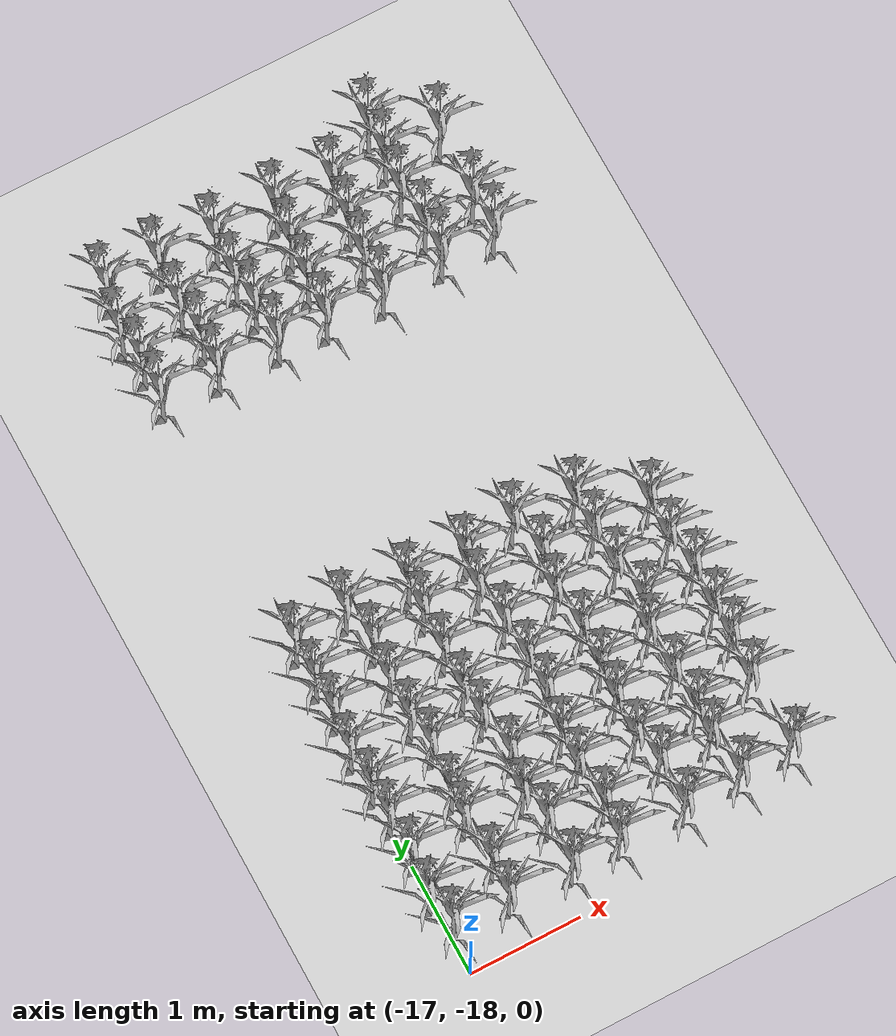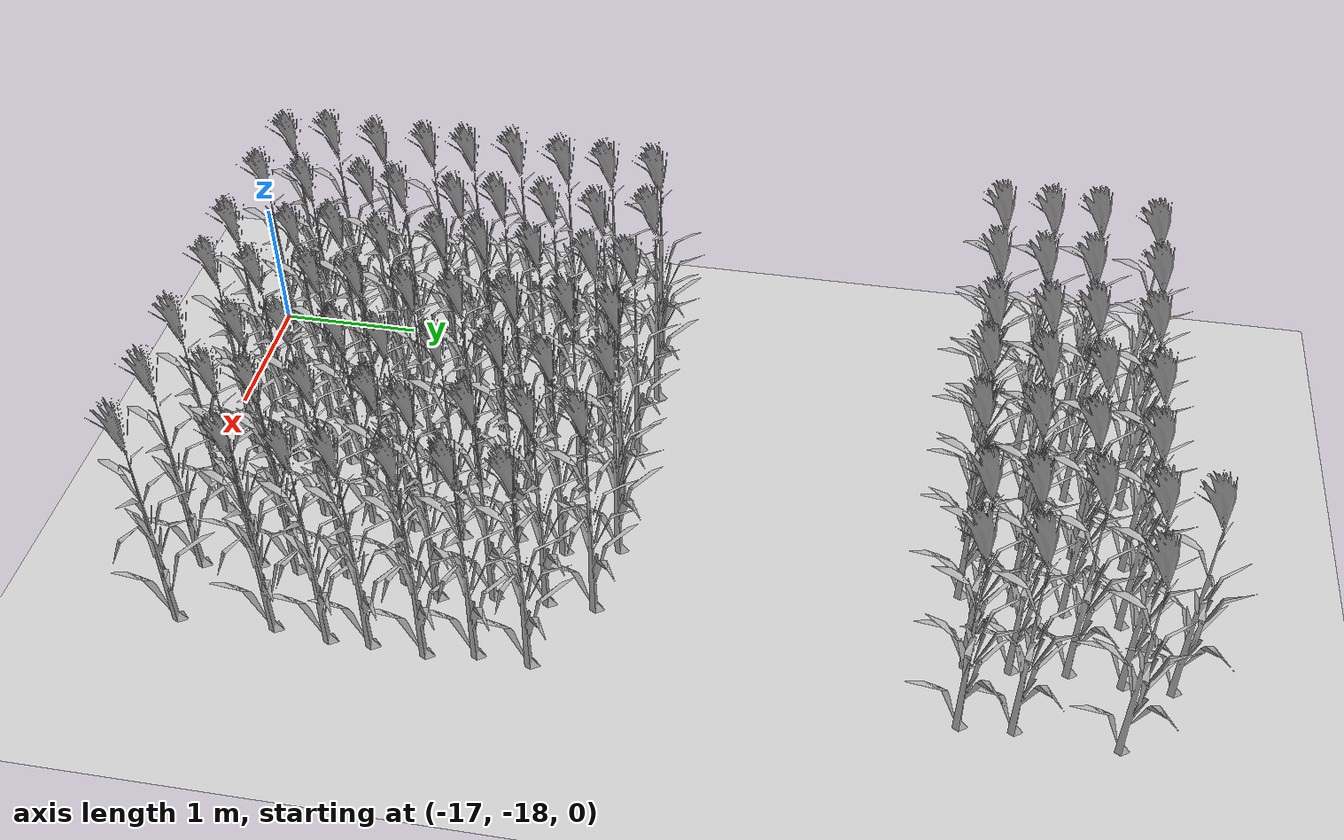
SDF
<sdf version="1.7">
 <world name="farmland_world">
  <model name="ground_plane">
   <static>1</static>
   <link name="link">
    <collision name="collision">
     <geometry><plane><normal>0 0 1</normal><size>40.0 40.0</size></plane></geometry>
     <surface><friction><ode><mu>100</mu><mu2>50</mu2></ode></friction></surface>
    </collision>
    <visual name="visual">
     <cast_shadows>0</cast_shadows>
     <geometry><plane><normal>0 0 1</normal><size>40.0 40.0</size></plane></geometry>
     <material>
      <script><uri>file://media/materials/scripts/gazebo.material</uri><name>Gazebo/Grey</name></script>
     </material>
    </visual>
   </link>
  </model>
  <model name="tree_3_1632">
   <static>1</static>
   <link name="link">
    <collision name="collision">
     <geometry><mesh><uri>model://Corn_low_poly/corn.obj</uri><scale>1 1 1</scale></mesh></geometry>
     <surface><friction><ode><mu>100</mu><mu2>50</mu2></ode></friction></surface>
    </collision>
    <visual name="visual">
     <geometry><mesh><uri>model://Corn_low_poly/corn.obj</uri><scale>1 1 1</scale></mesh></geometry>
    </visual>
   </link>
   <pose>-13.94343240880805 -17.010801661793316 0 0 0 0</pose>
  </model>
  <model name="tree_3_1633">
   <static>1</static>
   <link name="link">
    <collision name="collision">
     <geometry><mesh><uri>model://Corn_low_poly/corn.obj</uri><scale>1 1 1</scale></mesh></geometry>
     <surface><friction><ode><mu>100</mu><mu2>50</mu2></ode></friction></surface>
    </collision>
    <visual name="visual">
     <geometry><mesh><uri>model://Corn_low_poly/corn.obj</uri><scale>1 1 1</scale></mesh></geometry>
    </visual>
   </link>
   <pose>-14.439973562699198 -17.025837714423414 0 0 0 0</pose>
  </model>
  <model name="tree_3_1634">
   <static>1</static>
   <link name="link">
    <collision name="collision">
     <geometry><mesh><uri>model://Corn_low_poly/corn.obj</uri><scale>1 1 1</scale></mesh></geometry>
     <surface><friction><ode><mu>100</mu><mu2>50</mu2></ode></friction></surface>
    </collision>
    <visual name="visual">
     <geometry><mesh><uri>model://Corn_low_poly/corn.obj</uri><scale>1 1 1</scale></mesh></geometry>
    </visual>
   </link>
   <pose>-14.985562298791491 -17.01346754902586 0 0 0 0</pose>
  </model>
  <model name="tree_3_1635">
   <static>1</static>
   <link name="link">
    <collision name="collision">
     <geometry><mesh><uri>model://Corn_low_poly/corn.obj</uri><scale>1 1 1</scale></mesh></geometry>
     <surface><friction><ode><mu>100</mu><mu2>50</mu2></ode></friction></surface>
    </collision>
    <visual name="visual">
     <geometry><mesh><uri>model://Corn_low_poly/corn.obj</uri><scale>1 1 1</scale></mesh></geometry>
    </visual>
   </link>
   <pose>-15.499100371139539 -16.996762012509702 0 0 0 0</pose>
  </model>
  <model name="tree_3_1636">
   <static>1</static>
   <link name="link">
    <collision name="collision">
     <geometry><mesh><uri>model://Corn_low_poly/corn.obj</uri><scale>1 1 1</scale></mesh></geometry>
     <surface><friction><ode><mu>100</mu><mu2>50</mu2></ode></friction></surface>
    </collision>
    <visual name="visual">
     <geometry><mesh><uri>model://Corn_low_poly/corn.obj</uri><scale>1 1 1</scale></mesh></geometry>
    </visual>
   </link>
   <pose>-16.004698252896493 -17.01010474512301 0 0 0 0</pose>
  </model>
  <model name="tree_3_1637">
   <static>1</static>
   <link name="link">
    <collision name="collision">
     <geometry><mesh><uri>model://Corn_low_poly/corn.obj</uri><scale>1 1 1</scale></mesh></geometry>
     <surface><friction><ode><mu>100</mu><mu2>50</mu2></ode></friction></surface>
    </collision>
    <visual name="visual">
     <geometry><mesh><uri>model://Corn_low_poly/corn.obj</uri><scale>1 1 1</scale></mesh></geometry>
    </visual>
   </link>
   <pose>-16.505018048757087 -16.956187553822417 0 0 0 0</pose>
  </model>
  <model name="tree_3_1638">
   <static>1</static>
   <link name="link">
    <collision name="collision">
     <geometry><mesh><uri>model://Corn_low_poly/corn.obj</uri><scale>1 1 1</scale></mesh></geometry>
     <surface><friction><ode><mu>100</mu><mu2>50</mu2></ode></friction></surface>
    </collision>
    <visual name="visual">
     <geometry><mesh><uri>model://Corn_low_poly/corn.obj</uri><scale>1 1 1</scale></mesh></geometry>
    </visual>
   </link>
   <pose>-17.006674460531737 -17.018117891384872 0 0 0 0</pose>
  </model>
  <model name="tree_3_1667">
   <static>1</static>
   <link name="link">
    <collision name="collision">
     <geometry><mesh><uri>model://Corn_low_poly/corn.obj</uri><scale>1 1 1</scale></mesh></geometry>
     <surface><friction><ode><mu>100</mu><mu2>50</mu2></ode></friction></surface>
    </collision>
    <visual name="visual">
     <geometry><mesh><uri>model://Corn_low_poly/corn.obj</uri><scale>1 1 1</scale></mesh></geometry>
    </visual>
   </link>
   <pose>-14.45262130340462 -17.29042798549356 0 0 0 0</pose>
  </model>
  <model name="tree_3_1668">
   <static>1</static>
   <link name="link">
    <collision name="collision">
     <geometry><mesh><uri>model://Corn_low_poly/corn.obj</uri><scale>1 1 1</scale></mesh></geometry>
     <surface><friction><ode><mu>100</mu><mu2>50</mu2></ode></friction></surface>
    </collision>
    <visual name="visual">
     <geometry><mesh><uri>model://Corn_low_poly/corn.obj</uri><scale>1 1 1</scale></mesh></geometry>
    </visual>
   </link>
   <pose>-14.916517264053812 -17.289809059414342 0 0 0 0</pose>
  </model>
  <model name="tree_3_1669">
   <static>1</static>
   <link name="link">
    <collision name="collision">
     <geometry><mesh><uri>model://Corn_low_poly/corn.obj</uri><scale>1 1 1</scale></mesh></geometry>
     <surface><friction><ode><mu>100</mu><mu2>50</mu2></ode></friction></surface>
    </collision>
    <visual name="visual">
     <geometry><mesh><uri>model://Corn_low_poly/corn.obj</uri><scale>1 1 1</scale></mesh></geometry>
    </visual>
   </link>
   <pose>-15.463893228445706 -17.37535965711419 0 0 0 0</pose>
  </model>
  <model name="tree_3_1670">
   <static>1</static>
   <link name="link">
    <collision name="collision">
     <geometry><mesh><uri>model://Corn_low_poly/corn.obj</uri><scale>1 1 1</scale></mesh></geometry>
     <surface><friction><ode><mu>100</mu><mu2>50</mu2></ode></friction></surface>
    </collision>
    <visual name="visual">
     <geometry><mesh><uri>model://Corn_low_poly/corn.obj</uri><scale>1 1 1</scale></mesh></geometry>
    </visual>
   </link>
   <pose>-15.92803509974474 -17.281403429546287 0 0 0 0</pose>
  </model>
  <model name="tree_3_1671">
   <static>1</static>
   <link name="link">
    <collision name="collision">
     <geometry><mesh><uri>model://Corn_low_poly/corn.obj</uri><scale>1 1 1</scale></mesh></geometry>
     <surface><friction><ode><mu>100</mu><mu2>50</mu2></ode></friction></surface>
    </collision>
    <visual name="visual">
     <geometry><mesh><uri>model://Corn_low_poly/corn.obj</uri><scale>1 1 1</scale></mesh></geometry>
    </visual>
   </link>
   <pose>-16.474035507246686 -17.376660907676413 0 0 0 0</pose>
  </model>
  <model name="tree_3_1672">
   <static>1</static>
   <link name="link">
    <collision name="collision">
     <geometry><mesh><uri>model://Corn_low_poly/corn.obj</uri><scale>1 1 1</scale></mesh></geometry>
     <surface><friction><ode><mu>100</mu><mu2>50</mu2></ode></friction></surface>
    </collision>
    <visual name="visual">
     <geometry><mesh><uri>model://Corn_low_poly/corn.obj</uri><scale>1 1 1</scale></mesh></geometry>
    </visual>
   </link>
   <pose>-17.04250457852733 -17.377108292955473 0 0 0 0</pose>
  </model>
  <model name="tree_3_1700">
   <static>1</static>
   <link name="link">
    <collision name="collision">
     <geometry><mesh><uri>model://Corn_low_poly/corn.obj</uri><scale>1 1 1</scale></mesh></geometry>
     <surface><friction><ode><mu>100</mu><mu2>50</mu2></ode></friction></surface>
    </collision>
    <visual name="visual">
     <geometry><mesh><uri>model://Corn_low_poly/corn.obj</uri><scale>1 1 1</scale></mesh></geometry>
    </visual>
   </link>
   <pose>-13.920688316431082 -17.653035680214312 0 0 0 0</pose>
  </model>
  <model name="tree_3_1701">
   <static>1</static>
   <link name="link">
    <collision name="collision">
     <geometry><mesh><uri>model://Corn_low_poly/corn.obj</uri><scale>1 1 1</scale></mesh></geometry>
     <surface><friction><ode><mu>100</mu><mu2>50</mu2></ode></friction></surface>
    </collision>
    <visual name="visual">
     <geometry><mesh><uri>model://Corn_low_poly/corn.obj</uri><scale>1 1 1</scale></mesh></geometry>
    </visual>
   </link>
   <pose>-14.39308943822073 -17.668799636374324 0 0 0 0</pose>
  </model>
  <model name="tree_3_1702">
   <static>1</static>
   <link name="link">
    <collision name="collision">
     <geometry><mesh><uri>model://Corn_low_poly/corn.obj</uri><scale>1 1 1</scale></mesh></geometry>
     <surface><friction><ode><mu>100</mu><mu2>50</mu2></ode></friction></surface>
    </collision>
    <visual name="visual">
     <geometry><mesh><uri>model://Corn_low_poly/corn.obj</uri><scale>1 1 1</scale></mesh></geometry>
    </visual>
   </link>
   <pose>-14.90457997231634 -17.690328354239906 0 0 0 0</pose>
  </model>
  <model name="tree_3_1703">
   <static>1</static>
   <link name="link">
    <collision name="collision">
     <geometry><mesh><uri>model://Corn_low_poly/corn.obj</uri><scale>1 1 1</scale></mesh></geometry>
     <surface><friction><ode><mu>100</mu><mu2>50</mu2></ode></friction></surface>
    </collision>
    <visual name="visual">
     <geometry><mesh><uri>model://Corn_low_poly/corn.obj</uri><scale>1 1 1</scale></mesh></geometry>
    </visual>
   </link>
   <pose>-15.493620941622273 -17.686445619850055 0 0 0 0</pose>
  </model>
  <model name="tree_3_1704">
   <static>1</static>
   <link name="link">
    <collision name="collision">
     <geometry><mesh><uri>model://Corn_low_poly/corn.obj</uri><scale>1 1 1</scale></mesh></geometry>
     <surface><friction><ode><mu>100</mu><mu2>50</mu2></ode></friction></surface>
    </collision>
    <visual name="visual">
     <geometry><mesh><uri>model://Corn_low_poly/corn.obj</uri><scale>1 1 1</scale></mesh></geometry>
    </visual>
   </link>
   <pose>-15.930686778464093 -17.703574726734168 0 0 0 0</pose>
  </model>
  <model name="tree_3_1705">
   <static>1</static>
   <link name="link">
    <collision name="collision">
     <geometry><mesh><uri>model://Corn_low_poly/corn.obj</uri><scale>1 1 1</scale></mesh></geometry>
     <surface><friction><ode><mu>100</mu><mu2>50</mu2></ode></friction></surface>
    </collision>
    <visual name="visual">
     <geometry><mesh><uri>model://Corn_low_poly/corn.obj</uri><scale>1 1 1</scale></mesh></geometry>
    </visual>
   </link>
   <pose>-16.493567892534987 -17.69414692530904 0 0 0 0</pose>
  </model>
  <model name="tree_3_1706">
   <static>1</static>
   <link name="link">
    <collision name="collision">
     <geometry><mesh><uri>model://Corn_low_poly/corn.obj</uri><scale>1 1 1</scale></mesh></geometry>
     <surface><friction><ode><mu>100</mu><mu2>50</mu2></ode></friction></surface>
    </collision>
    <visual name="visual">
     <geometry><mesh><uri>model://Corn_low_poly/corn.obj</uri><scale>1 1 1</scale></mesh></geometry>
    </visual>
   </link>
   <pose>-16.981287621819096 -17.66660512518102 0 0 0 0</pose>
  </model>
  <model name="tree_3_1734">
   <static>1</static>
   <link name="link">
    <collision name="collision">
     <geometry><mesh><uri>model://Corn_low_poly/corn.obj</uri><scale>1 1 1</scale></mesh></geometry>
     <surface><friction><ode><mu>100</mu><mu2>50</mu2></ode></friction></surface>
    </collision>
    <visual name="visual">
     <geometry><mesh><uri>model://Corn_low_poly/corn.obj</uri><scale>1 1 1</scale></mesh></geometry>
    </visual>
   </link>
   <pose>-13.899653008258563 -15.999240825247368 0 0 0 0</pose>
  </model>
  <model name="tree_3_1735">
   <static>1</static>
   <link name="link">
    <collision name="collision">
     <geometry><mesh><uri>model://Corn_low_poly/corn.obj</uri><scale>1 1 1</scale></mesh></geometry>
     <surface><friction><ode><mu>100</mu><mu2>50</mu2></ode></friction></surface>
    </collision>
    <visual name="visual">
     <geometry><mesh><uri>model://Corn_low_poly/corn.obj</uri><scale>1 1 1</scale></mesh></geometry>
    </visual>
   </link>
   <pose>-14.375652090142932 -16.04330724557954 0 0 0 0</pose>
  </model>
  <model name="tree_3_1736">
   <static>1</static>
   <link name="link">
    <collision name="collision">
     <geometry><mesh><uri>model://Corn_low_poly/corn.obj</uri><scale>1 1 1</scale></mesh></geometry>
     <surface><friction><ode><mu>100</mu><mu2>50</mu2></ode></friction></surface>
    </collision>
    <visual name="visual">
     <geometry><mesh><uri>model://Corn_low_poly/corn.obj</uri><scale>1 1 1</scale></mesh></geometry>
    </visual>
   </link>
   <pose>-14.932257012029147 -16.02485146985959 0 0 0 0</pose>
  </model>
  <model name="tree_3_1737">
   <static>1</static>
   <link name="link">
    <collision name="collision">
     <geometry><mesh><uri>model://Corn_low_poly/corn.obj</uri><scale>1 1 1</scale></mesh></geometry>
     <surface><friction><ode><mu>100</mu><mu2>50</mu2></ode></friction></surface>
    </collision>
    <visual name="visual">
     <geometry><mesh><uri>model://Corn_low_poly/corn.obj</uri><scale>1 1 1</scale></mesh></geometry>
    </visual>
   </link>
   <pose>-15.432157021553541 -16.033897954952316 0 0 0 0</pose>
  </model>
  <model name="tree_3_1738">
   <static>1</static>
   <link name="link">
    <collision name="collision">
     <geometry><mesh><uri>model://Corn_low_poly/corn.obj</uri><scale>1 1 1</scale></mesh></geometry>
     <surface><friction><ode><mu>100</mu><mu2>50</mu2></ode></friction></surface>
    </collision>
    <visual name="visual">
     <geometry><mesh><uri>model://Corn_low_poly/corn.obj</uri><scale>1 1 1</scale></mesh></geometry>
    </visual>
   </link>
   <pose>-16.00995705380238 -16.021893765694596 0 0 0 0</pose>
  </model>
  <model name="tree_3_1739">
   <static>1</static>
   <link name="link">
    <collision name="collision">
     <geometry><mesh><uri>model://Corn_low_poly/corn.obj</uri><scale>1 1 1</scale></mesh></geometry>
     <surface><friction><ode><mu>100</mu><mu2>50</mu2></ode></friction></surface>
    </collision>
    <visual name="visual">
     <geometry><mesh><uri>model://Corn_low_poly/corn.obj</uri><scale>1 1 1</scale></mesh></geometry>
    </visual>
   </link>
   <pose>-16.4899727266005 -16.0184429991483 0 0 0 0</pose>
  </model>
  <model name="tree_3_1740">
   <static>1</static>
   <link name="link">
    <collision name="collision">
     <geometry><mesh><uri>model://Corn_low_poly/corn.obj</uri><scale>1 1 1</scale></mesh></geometry>
     <surface><friction><ode><mu>100</mu><mu2>50</mu2></ode></friction></surface>
    </collision>
    <visual name="visual">
     <geometry><mesh><uri>model://Corn_low_poly/corn.obj</uri><scale>1 1 1</scale></mesh></geometry>
    </visual>
   </link>
   <pose>-17.041640770921173 -16.03786102537527 0 0 0 0</pose>
  </model>
  <model name="tree_3_1768">
   <static>1</static>
   <link name="link">
    <collision name="collision">
     <geometry><mesh><uri>model://Corn_low_poly/corn.obj</uri><scale>1 1 1</scale></mesh></geometry>
     <surface><friction><ode><mu>100</mu><mu2>50</mu2></ode></friction></surface>
    </collision>
    <visual name="visual">
     <geometry><mesh><uri>model://Corn_low_poly/corn.obj</uri><scale>1 1 1</scale></mesh></geometry>
    </visual>
   </link>
   <pose>-13.916194819073338 -16.358989126024753 0 0 0 0</pose>
  </model>
  <model name="tree_3_1769">
   <static>1</static>
   <link name="link">
    <collision name="collision">
     <geometry><mesh><uri>model://Corn_low_poly/corn.obj</uri><scale>1 1 1</scale></mesh></geometry>
     <surface><friction><ode><mu>100</mu><mu2>50</mu2></ode></friction></surface>
    </collision>
    <visual name="visual">
     <geometry><mesh><uri>model://Corn_low_poly/corn.obj</uri><scale>1 1 1</scale></mesh></geometry>
    </visual>
   </link>
   <pose>-14.472746082500388 -16.296141562295695 0 0 0 0</pose>
  </model>
  <model name="tree_3_1770">
   <static>1</static>
   <link name="link">
    <collision name="collision">
     <geometry><mesh><uri>model://Corn_low_poly/corn.obj</uri><scale>1 1 1</scale></mesh></geometry>
     <surface><friction><ode><mu>100</mu><mu2>50</mu2></ode></friction></surface>
    </collision>
    <visual name="visual">
     <geometry><mesh><uri>model://Corn_low_poly/corn.obj</uri><scale>1 1 1</scale></mesh></geometry>
    </visual>
   </link>
   <pose>-14.948517907633658 -16.373649947890947 0 0 0 0</pose>
  </model>
  <model name="tree_3_1771">
   <static>1</static>
   <link name="link">
    <collision name="collision">
     <geometry><mesh><uri>model://Corn_low_poly/corn.obj</uri><scale>1 1 1</scale></mesh></geometry>
     <surface><friction><ode><mu>100</mu><mu2>50</mu2></ode></friction></surface>
    </collision>
    <visual name="visual">
     <geometry><mesh><uri>model://Corn_low_poly/corn.obj</uri><scale>1 1 1</scale></mesh></geometry>
    </visual>
   </link>
   <pose>-15.426734606548008 -16.34715590843223 0 0 0 0</pose>
  </model>
  <model name="tree_3_1772">
   <static>1</static>
   <link name="link">
    <collision name="collision">
     <geometry><mesh><uri>model://Corn_low_poly/corn.obj</uri><scale>1 1 1</scale></mesh></geometry>
     <surface><friction><ode><mu>100</mu><mu2>50</mu2></ode></friction></surface>
    </collision>
    <visual name="visual">
     <geometry><mesh><uri>model://Corn_low_poly/corn.obj</uri><scale>1 1 1</scale></mesh></geometry>
    </visual>
   </link>
   <pose>-15.986303641970583 -16.29150956570107 0 0 0 0</pose>
  </model>
  <model name="tree_3_1773">
   <static>1</static>
   <link name="link">
    <collision name="collision">
     <geometry><mesh><uri>model://Corn_low_poly/corn.obj</uri><scale>1 1 1</scale></mesh></geometry>
     <surface><friction><ode><mu>100</mu><mu2>50</mu2></ode></friction></surface>
    </collision>
    <visual name="visual">
     <geometry><mesh><uri>model://Corn_low_poly/corn.obj</uri><scale>1 1 1</scale></mesh></geometry>
    </visual>
   </link>
   <pose>-16.449553249788092 -16.303296338209762 0 0 0 0</pose>
  </model>
  <model name="tree_3_1774">
   <static>1</static>
   <link name="link">
    <collision name="collision">
     <geometry><mesh><uri>model://Corn_low_poly/corn.obj</uri><scale>1 1 1</scale></mesh></geometry>
     <surface><friction><ode><mu>100</mu><mu2>50</mu2></ode></friction></surface>
    </collision>
    <visual name="visual">
     <geometry><mesh><uri>model://Corn_low_poly/corn.obj</uri><scale>1 1 1</scale></mesh></geometry>
    </visual>
   </link>
   <pose>-17.023637239485836 -16.373493268178507 0 0 0 0</pose>
  </model>
  <model name="tree_3_1802">
   <static>1</static>
   <link name="link">
    <collision name="collision">
     <geometry><mesh><uri>model://Corn_low_poly/corn.obj</uri><scale>1 1 1</scale></mesh></geometry>
     <surface><friction><ode><mu>100</mu><mu2>50</mu2></ode></friction></surface>
    </collision>
    <visual name="visual">
     <geometry><mesh><uri>model://Corn_low_poly/corn.obj</uri><scale>1 1 1</scale></mesh></geometry>
    </visual>
   </link>
   <pose>-13.909014978315188 -16.63664097909121 0 0 0 0</pose>
  </model>
  <model name="tree_3_1803">
   <static>1</static>
   <link name="link">
    <collision name="collision">
     <geometry><mesh><uri>model://Corn_low_poly/corn.obj</uri><scale>1 1 1</scale></mesh></geometry>
     <surface><friction><ode><mu>100</mu><mu2>50</mu2></ode></friction></surface>
    </collision>
    <visual name="visual">
     <geometry><mesh><uri>model://Corn_low_poly/corn.obj</uri><scale>1 1 1</scale></mesh></geometry>
    </visual>
   </link>
   <pose>-14.465035297700613 -16.688067573031372 0 0 0 0</pose>
  </model>
  <model name="tree_3_1804">
   <static>1</static>
   <link name="link">
    <collision name="collision">
     <geometry><mesh><uri>model://Corn_low_poly/corn.obj</uri><scale>1 1 1</scale></mesh></geometry>
     <surface><friction><ode><mu>100</mu><mu2>50</mu2></ode></friction></surface>
    </collision>
    <visual name="visual">
     <geometry><mesh><uri>model://Corn_low_poly/corn.obj</uri><scale>1 1 1</scale></mesh></geometry>
    </visual>
   </link>
   <pose>-14.972034034142897 -16.6613526449487 0 0 0 0</pose>
  </model>
  <model name="tree_3_1805">
   <static>1</static>
   <link name="link">
    <collision name="collision">
     <geometry><mesh><uri>model://Corn_low_poly/corn.obj</uri><scale>1 1 1</scale></mesh></geometry>
     <surface><friction><ode><mu>100</mu><mu2>50</mu2></ode></friction></surface>
    </collision>
    <visual name="visual">
     <geometry><mesh><uri>model://Corn_low_poly/corn.obj</uri><scale>1 1 1</scale></mesh></geometry>
    </visual>
   </link>
   <pose>-15.492559516799552 -16.713695902032143 0 0 0 0</pose>
  </model>
  <model name="tree_3_1806">
   <static>1</static>
   <link name="link">
    <collision name="collision">
     <geometry><mesh><uri>model://Corn_low_poly/corn.obj</uri><scale>1 1 1</scale></mesh></geometry>
     <surface><friction><ode><mu>100</mu><mu2>50</mu2></ode></friction></surface>
    </collision>
    <visual name="visual">
     <geometry><mesh><uri>model://Corn_low_poly/corn.obj</uri><scale>1 1 1</scale></mesh></geometry>
    </visual>
   </link>
   <pose>-15.924641881937003 -16.663931121729266 0 0 0 0</pose>
  </model>
  <model name="tree_3_1807">
   <static>1</static>
   <link name="link">
    <collision name="collision">
     <geometry><mesh><uri>model://Corn_low_poly/corn.obj</uri><scale>1 1 1</scale></mesh></geometry>
     <surface><friction><ode><mu>100</mu><mu2>50</mu2></ode></friction></surface>
    </collision>
    <visual name="visual">
     <geometry><mesh><uri>model://Corn_low_poly/corn.obj</uri><scale>1 1 1</scale></mesh></geometry>
    </visual>
   </link>
   <pose>-16.48552865960309 -16.71570163697759 0 0 0 0</pose>
  </model>
  <model name="tree_3_1808">
   <static>1</static>
   <link name="link">
    <collision name="collision">
     <geometry><mesh><uri>model://Corn_low_poly/corn.obj</uri><scale>1 1 1</scale></mesh></geometry>
     <surface><friction><ode><mu>100</mu><mu2>50</mu2></ode></friction></surface>
    </collision>
    <visual name="visual">
     <geometry><mesh><uri>model://Corn_low_poly/corn.obj</uri><scale>1 1 1</scale></mesh></geometry>
    </visual>
   </link>
   <pose>-17.021395358732946 -16.665746849592615 0 0 0 0</pose>
  </model>
  <model name="tree_3_1837">
   <static>1</static>
   <link name="link">
    <collision name="collision">
     <geometry><mesh><uri>model://Corn_low_poly/corn.obj</uri><scale>1 1 1</scale></mesh></geometry>
     <surface><friction><ode><mu>100</mu><mu2>50</mu2></ode></friction></surface>
    </collision>
    <visual name="visual">
     <geometry><mesh><uri>model://Corn_low_poly/corn.obj</uri><scale>1 1 1</scale></mesh></geometry>
    </visual>
   </link>
   <pose>-14.457110423272368 -15.021115977395514 0 0 0 0</pose>
  </model>
  <model name="tree_3_1838">
   <static>1</static>
   <link name="link">
    <collision name="collision">
     <geometry><mesh><uri>model://Corn_low_poly/corn.obj</uri><scale>1 1 1</scale></mesh></geometry>
     <surface><friction><ode><mu>100</mu><mu2>50</mu2></ode></friction></surface>
    </collision>
    <visual name="visual">
     <geometry><mesh><uri>model://Corn_low_poly/corn.obj</uri><scale>1 1 1</scale></mesh></geometry>
    </visual>
   </link>
   <pose>-14.988855654472369 -14.963502710577501 0 0 0 0</pose>
  </model>
  <model name="tree_3_1839">
   <static>1</static>
   <link name="link">
    <collision name="collision">
     <geometry><mesh><uri>model://Corn_low_poly/corn.obj</uri><scale>1 1 1</scale></mesh></geometry>
     <surface><friction><ode><mu>100</mu><mu2>50</mu2></ode></friction></surface>
    </collision>
    <visual name="visual">
     <geometry><mesh><uri>model://Corn_low_poly/corn.obj</uri><scale>1 1 1</scale></mesh></geometry>
    </visual>
   </link>
   <pose>-15.452652766497781 -15.027102902810764 0 0 0 0</pose>
  </model>
  <model name="tree_3_1840">
   <static>1</static>
   <link name="link">
    <collision name="collision">
     <geometry><mesh><uri>model://Corn_low_poly/corn.obj</uri><scale>1 1 1</scale></mesh></geometry>
     <surface><friction><ode><mu>100</mu><mu2>50</mu2></ode></friction></surface>
    </collision>
    <visual name="visual">
     <geometry><mesh><uri>model://Corn_low_poly/corn.obj</uri><scale>1 1 1</scale></mesh></geometry>
    </visual>
   </link>
   <pose>-15.967457675088106 -15.01714550180582 0 0 0 0</pose>
  </model>
  <model name="tree_3_1841">
   <static>1</static>
   <link name="link">
    <collision name="collision">
     <geometry><mesh><uri>model://Corn_low_poly/corn.obj</uri><scale>1 1 1</scale></mesh></geometry>
     <surface><friction><ode><mu>100</mu><mu2>50</mu2></ode></friction></surface>
    </collision>
    <visual name="visual">
     <geometry><mesh><uri>model://Corn_low_poly/corn.obj</uri><scale>1 1 1</scale></mesh></geometry>
    </visual>
   </link>
   <pose>-16.52705980069439 -14.979509942564436 0 0 0 0</pose>
  </model>
  <model name="tree_3_1842">
   <static>1</static>
   <link name="link">
    <collision name="collision">
     <geometry><mesh><uri>model://Corn_low_poly/corn.obj</uri><scale>1 1 1</scale></mesh></geometry>
     <surface><friction><ode><mu>100</mu><mu2>50</mu2></ode></friction></surface>
    </collision>
    <visual name="visual">
     <geometry><mesh><uri>model://Corn_low_poly/corn.obj</uri><scale>1 1 1</scale></mesh></geometry>
    </visual>
   </link>
   <pose>-17.010521360142214 -15.033169217101065 0 0 0 0</pose>
  </model>
  <model name="tree_3_1870">
   <static>1</static>
   <link name="link">
    <collision name="collision">
     <geometry><mesh><uri>model://Corn_low_poly/corn.obj</uri><scale>1 1 1</scale></mesh></geometry>
     <surface><friction><ode><mu>100</mu><mu2>50</mu2></ode></friction></surface>
    </collision>
    <visual name="visual">
     <geometry><mesh><uri>model://Corn_low_poly/corn.obj</uri><scale>1 1 1</scale></mesh></geometry>
    </visual>
   </link>
   <pose>-13.936065893565186 -15.329511948354948 0 0 0 0</pose>
  </model>
  <model name="tree_3_1871">
   <static>1</static>
   <link name="link">
    <collision name="collision">
     <geometry><mesh><uri>model://Corn_low_poly/corn.obj</uri><scale>1 1 1</scale></mesh></geometry>
     <surface><friction><ode><mu>100</mu><mu2>50</mu2></ode></friction></surface>
    </collision>
    <visual name="visual">
     <geometry><mesh><uri>model://Corn_low_poly/corn.obj</uri><scale>1 1 1</scale></mesh></geometry>
    </visual>
   </link>
   <pose>-14.449372229254903 -15.333281300359403 0 0 0 0</pose>
  </model>
  <model name="tree_3_1872">
   <static>1</static>
   <link name="link">
    <collision name="collision">
     <geometry><mesh><uri>model://Corn_low_poly/corn.obj</uri><scale>1 1 1</scale></mesh></geometry>
     <surface><friction><ode><mu>100</mu><mu2>50</mu2></ode></friction></surface>
    </collision>
    <visual name="visual">
     <geometry><mesh><uri>model://Corn_low_poly/corn.obj</uri><scale>1 1 1</scale></mesh></geometry>
    </visual>
   </link>
   <pose>-14.91001895735935 -15.323159532503 0 0 0 0</pose>
  </model>
  <model name="tree_3_1873">
   <static>1</static>
   <link name="link">
    <collision name="collision">
     <geometry><mesh><uri>model://Corn_low_poly/corn.obj</uri><scale>1 1 1</scale></mesh></geometry>
     <surface><friction><ode><mu>100</mu><mu2>50</mu2></ode></friction></surface>
    </collision>
    <visual name="visual">
     <geometry><mesh><uri>model://Corn_low_poly/corn.obj</uri><scale>1 1 1</scale></mesh></geometry>
    </visual>
   </link>
   <pose>-15.501613019891108 -15.328794808812928 0 0 0 0</pose>
  </model>
  <model name="tree_3_1874">
   <static>1</static>
   <link name="link">
    <collision name="collision">
     <geometry><mesh><uri>model://Corn_low_poly/corn.obj</uri><scale>1 1 1</scale></mesh></geometry>
     <surface><friction><ode><mu>100</mu><mu2>50</mu2></ode></friction></surface>
    </collision>
    <visual name="visual">
     <geometry><mesh><uri>model://Corn_low_poly/corn.obj</uri><scale>1 1 1</scale></mesh></geometry>
    </visual>
   </link>
   <pose>-15.97766085060282 -15.28112888943563 0 0 0 0</pose>
  </model>
  <model name="tree_3_1875">
   <static>1</static>
   <link name="link">
    <collision name="collision">
     <geometry><mesh><uri>model://Corn_low_poly/corn.obj</uri><scale>1 1 1</scale></mesh></geometry>
     <surface><friction><ode><mu>100</mu><mu2>50</mu2></ode></friction></surface>
    </collision>
    <visual name="visual">
     <geometry><mesh><uri>model://Corn_low_poly/corn.obj</uri><scale>1 1 1</scale></mesh></geometry>
    </visual>
   </link>
   <pose>-16.457781717004277 -15.324808669668286 0 0 0 0</pose>
  </model>
  <model name="tree_3_1876">
   <static>1</static>
   <link name="link">
    <collision name="collision">
     <geometry><mesh><uri>model://Corn_low_poly/corn.obj</uri><scale>1 1 1</scale></mesh></geometry>
     <surface><friction><ode><mu>100</mu><mu2>50</mu2></ode></friction></surface>
    </collision>
    <visual name="visual">
     <geometry><mesh><uri>model://Corn_low_poly/corn.obj</uri><scale>1 1 1</scale></mesh></geometry>
    </visual>
   </link>
   <pose>-17.006523614795523 -15.373669334630272 0 0 0 0</pose>
  </model>
  <model name="tree_3_1904">
   <static>1</static>
   <link name="link">
    <collision name="collision">
     <geometry><mesh><uri>model://Corn_low_poly/corn.obj</uri><scale>1 1 1</scale></mesh></geometry>
     <surface><friction><ode><mu>100</mu><mu2>50</mu2></ode></friction></surface>
    </collision>
    <visual name="visual">
     <geometry><mesh><uri>model://Corn_low_poly/corn.obj</uri><scale>1 1 1</scale></mesh></geometry>
    </visual>
   </link>
   <pose>-13.950296990283181 -15.67806716265143 0 0 0 0</pose>
  </model>
  <model name="tree_3_1905">
   <static>1</static>
   <link name="link">
    <collision name="collision">
     <geometry><mesh><uri>model://Corn_low_poly/corn.obj</uri><scale>1 1 1</scale></mesh></geometry>
     <surface><friction><ode><mu>100</mu><mu2>50</mu2></ode></friction></surface>
    </collision>
    <visual name="visual">
     <geometry><mesh><uri>model://Corn_low_poly/corn.obj</uri><scale>1 1 1</scale></mesh></geometry>
    </visual>
   </link>
   <pose>-14.440714223258741 -15.686744002913153 0 0 0 0</pose>
  </model>
  <model name="tree_3_1906">
   <static>1</static>
   <link name="link">
    <collision name="collision">
     <geometry><mesh><uri>model://Corn_low_poly/corn.obj</uri><scale>1 1 1</scale></mesh></geometry>
     <surface><friction><ode><mu>100</mu><mu2>50</mu2></ode></friction></surface>
    </collision>
    <visual name="visual">
     <geometry><mesh><uri>model://Corn_low_poly/corn.obj</uri><scale>1 1 1</scale></mesh></geometry>
    </visual>
   </link>
   <pose>-14.974483475952178 -15.653528600520062 0 0 0 0</pose>
  </model>
  <model name="tree_3_1907">
   <static>1</static>
   <link name="link">
    <collision name="collision">
     <geometry><mesh><uri>model://Corn_low_poly/corn.obj</uri><scale>1 1 1</scale></mesh></geometry>
     <surface><friction><ode><mu>100</mu><mu2>50</mu2></ode></friction></surface>
    </collision>
    <visual name="visual">
     <geometry><mesh><uri>model://Corn_low_poly/corn.obj</uri><scale>1 1 1</scale></mesh></geometry>
    </visual>
   </link>
   <pose>-15.451872622586405 -15.679645832642114 0 0 0 0</pose>
  </model>
  <model name="tree_3_1908">
   <static>1</static>
   <link name="link">
    <collision name="collision">
     <geometry><mesh><uri>model://Corn_low_poly/corn.obj</uri><scale>1 1 1</scale></mesh></geometry>
     <surface><friction><ode><mu>100</mu><mu2>50</mu2></ode></friction></surface>
    </collision>
    <visual name="visual">
     <geometry><mesh><uri>model://Corn_low_poly/corn.obj</uri><scale>1 1 1</scale></mesh></geometry>
    </visual>
   </link>
   <pose>-15.997880627311382 -15.661187609506804 0 0 0 0</pose>
  </model>
  <model name="tree_3_1909">
   <static>1</static>
   <link name="link">
    <collision name="collision">
     <geometry><mesh><uri>model://Corn_low_poly/corn.obj</uri><scale>1 1 1</scale></mesh></geometry>
     <surface><friction><ode><mu>100</mu><mu2>50</mu2></ode></friction></surface>
    </collision>
    <visual name="visual">
     <geometry><mesh><uri>model://Corn_low_poly/corn.obj</uri><scale>1 1 1</scale></mesh></geometry>
    </visual>
   </link>
   <pose>-16.4937056022145 -15.676970420102965 0 0 0 0</pose>
  </model>
  <model name="tree_3_1910">
   <static>1</static>
   <link name="link">
    <collision name="collision">
     <geometry><mesh><uri>model://Corn_low_poly/corn.obj</uri><scale>1 1 1</scale></mesh></geometry>
     <surface><friction><ode><mu>100</mu><mu2>50</mu2></ode></friction></surface>
    </collision>
    <visual name="visual">
     <geometry><mesh><uri>model://Corn_low_poly/corn.obj</uri><scale>1 1 1</scale></mesh></geometry>
    </visual>
   </link>
   <pose>-17.001388058487823 -15.687165499728296 0 0 0 0</pose>
  </model>
  <model name="tree_3_1939">
   <static>1</static>
   <link name="link">
    <collision name="collision">
     <geometry><mesh><uri>model://Corn_low_poly/corn.obj</uri><scale>1 1 1</scale></mesh></geometry>
     <surface><friction><ode><mu>100</mu><mu2>50</mu2></ode></friction></surface>
    </collision>
    <visual name="visual">
     <geometry><mesh><uri>model://Corn_low_poly/corn.obj</uri><scale>1 1 1</scale></mesh></geometry>
    </visual>
   </link>
   <pose>-14.440256323241316 -12.00610459347083 0 0 0 0</pose>
  </model>
  <model name="tree_3_1940">
   <static>1</static>
   <link name="link">
    <collision name="collision">
     <geometry><mesh><uri>model://Corn_low_poly/corn.obj</uri><scale>1 1 1</scale></mesh></geometry>
     <surface><friction><ode><mu>100</mu><mu2>50</mu2></ode></friction></surface>
    </collision>
    <visual name="visual">
     <geometry><mesh><uri>model://Corn_low_poly/corn.obj</uri><scale>1 1 1</scale></mesh></geometry>
    </visual>
   </link>
   <pose>-14.933807627756702 -12.040826192434167 0 0 0 0</pose>
  </model>
  <model name="tree_3_1941">
   <static>1</static>
   <link name="link">
    <collision name="collision">
     <geometry><mesh><uri>model://Corn_low_poly/corn.obj</uri><scale>1 1 1</scale></mesh></geometry>
     <surface><friction><ode><mu>100</mu><mu2>50</mu2></ode></friction></surface>
    </collision>
    <visual name="visual">
     <geometry><mesh><uri>model://Corn_low_poly/corn.obj</uri><scale>1 1 1</scale></mesh></geometry>
    </visual>
   </link>
   <pose>-15.448372408906662 -11.983306033098296 0 0 0 0</pose>
  </model>
  <model name="tree_3_1942">
   <static>1</static>
   <link name="link">
    <collision name="collision">
     <geometry><mesh><uri>model://Corn_low_poly/corn.obj</uri><scale>1 1 1</scale></mesh></geometry>
     <surface><friction><ode><mu>100</mu><mu2>50</mu2></ode></friction></surface>
    </collision>
    <visual name="visual">
     <geometry><mesh><uri>model://Corn_low_poly/corn.obj</uri><scale>1 1 1</scale></mesh></geometry>
    </visual>
   </link>
   <pose>-15.989593596106966 -12.035316911467639 0 0 0 0</pose>
  </model>
  <model name="tree_3_1943">
   <static>1</static>
   <link name="link">
    <collision name="collision">
     <geometry><mesh><uri>model://Corn_low_poly/corn.obj</uri><scale>1 1 1</scale></mesh></geometry>
     <surface><friction><ode><mu>100</mu><mu2>50</mu2></ode></friction></surface>
    </collision>
    <visual name="visual">
     <geometry><mesh><uri>model://Corn_low_poly/corn.obj</uri><scale>1 1 1</scale></mesh></geometry>
    </visual>
   </link>
   <pose>-16.50163480384809 -12.046233623347105 0 0 0 0</pose>
  </model>
  <model name="tree_3_1944">
   <static>1</static>
   <link name="link">
    <collision name="collision">
     <geometry><mesh><uri>model://Corn_low_poly/corn.obj</uri><scale>1 1 1</scale></mesh></geometry>
     <surface><friction><ode><mu>100</mu><mu2>50</mu2></ode></friction></surface>
    </collision>
    <visual name="visual">
     <geometry><mesh><uri>model://Corn_low_poly/corn.obj</uri><scale>1 1 1</scale></mesh></geometry>
    </visual>
   </link>
   <pose>-17.029844914067013 -12.008314370619361 0 0 0 0</pose>
  </model>
  <model name="tree_3_1972">
   <static>1</static>
   <link name="link">
    <collision name="collision">
     <geometry><mesh><uri>model://Corn_low_poly/corn.obj</uri><scale>1 1 1</scale></mesh></geometry>
     <surface><friction><ode><mu>100</mu><mu2>50</mu2></ode></friction></surface>
    </collision>
    <visual name="visual">
     <geometry><mesh><uri>model://Corn_low_poly/corn.obj</uri><scale>1 1 1</scale></mesh></geometry>
    </visual>
   </link>
   <pose>-13.940888167794725 -12.329281689028678 0 0 0 0</pose>
  </model>
  <model name="tree_3_1973">
   <static>1</static>
   <link name="link">
    <collision name="collision">
     <geometry><mesh><uri>model://Corn_low_poly/corn.obj</uri><scale>1 1 1</scale></mesh></geometry>
     <surface><friction><ode><mu>100</mu><mu2>50</mu2></ode></friction></surface>
    </collision>
    <visual name="visual">
     <geometry><mesh><uri>model://Corn_low_poly/corn.obj</uri><scale>1 1 1</scale></mesh></geometry>
    </visual>
   </link>
   <pose>-14.404731151234605 -12.364118270989556 0 0 0 0</pose>
  </model>
  <model name="tree_3_1974">
   <static>1</static>
   <link name="link">
    <collision name="collision">
     <geometry><mesh><uri>model://Corn_low_poly/corn.obj</uri><scale>1 1 1</scale></mesh></geometry>
     <surface><friction><ode><mu>100</mu><mu2>50</mu2></ode></friction></surface>
    </collision>
    <visual name="visual">
     <geometry><mesh><uri>model://Corn_low_poly/corn.obj</uri><scale>1 1 1</scale></mesh></geometry>
    </visual>
   </link>
   <pose>-14.974959349296904 -12.366297742510628 0 0 0 0</pose>
  </model>
  <model name="tree_3_1975">
   <static>1</static>
   <link name="link">
    <collision name="collision">
     <geometry><mesh><uri>model://Corn_low_poly/corn.obj</uri><scale>1 1 1</scale></mesh></geometry>
     <surface><friction><ode><mu>100</mu><mu2>50</mu2></ode></friction></surface>
    </collision>
    <visual name="visual">
     <geometry><mesh><uri>model://Corn_low_poly/corn.obj</uri><scale>1 1 1</scale></mesh></geometry>
    </visual>
   </link>
   <pose>-15.47120326401412 -12.326627984095497 0 0 0 0</pose>
  </model>
  <model name="tree_3_1976">
   <static>1</static>
   <link name="link">
    <collision name="collision">
     <geometry><mesh><uri>model://Corn_low_poly/corn.obj</uri><scale>1 1 1</scale></mesh></geometry>
     <surface><friction><ode><mu>100</mu><mu2>50</mu2></ode></friction></surface>
    </collision>
    <visual name="visual">
     <geometry><mesh><uri>model://Corn_low_poly/corn.obj</uri><scale>1 1 1</scale></mesh></geometry>
    </visual>
   </link>
   <pose>-15.953655623259378 -12.318010795738626 0 0 0 0</pose>
  </model>
  <model name="tree_3_1977">
   <static>1</static>
   <link name="link">
    <collision name="collision">
     <geometry><mesh><uri>model://Corn_low_poly/corn.obj</uri><scale>1 1 1</scale></mesh></geometry>
     <surface><friction><ode><mu>100</mu><mu2>50</mu2></ode></friction></surface>
    </collision>
    <visual name="visual">
     <geometry><mesh><uri>model://Corn_low_poly/corn.obj</uri><scale>1 1 1</scale></mesh></geometry>
    </visual>
   </link>
   <pose>-16.461087695302197 -12.358333445641687 0 0 0 0</pose>
  </model>
  <model name="tree_3_1978">
   <static>1</static>
   <link name="link">
    <collision name="collision">
     <geometry><mesh><uri>model://Corn_low_poly/corn.obj</uri><scale>1 1 1</scale></mesh></geometry>
     <surface><friction><ode><mu>100</mu><mu2>50</mu2></ode></friction></surface>
    </collision>
    <visual name="visual">
     <geometry><mesh><uri>model://Corn_low_poly/corn.obj</uri><scale>1 1 1</scale></mesh></geometry>
    </visual>
   </link>
   <pose>-16.991002975752604 -12.32079680766036 0 0 0 0</pose>
  </model>
  <model name="tree_3_2006">
   <static>1</static>
   <link name="link">
    <collision name="collision">
     <geometry><mesh><uri>model://Corn_low_poly/corn.obj</uri><scale>1 1 1</scale></mesh></geometry>
     <surface><friction><ode><mu>100</mu><mu2>50</mu2></ode></friction></surface>
    </collision>
    <visual name="visual">
     <geometry><mesh><uri>model://Corn_low_poly/corn.obj</uri><scale>1 1 1</scale></mesh></geometry>
    </visual>
   </link>
   <pose>-13.920525787848826 -12.661296804362157 0 0 0 0</pose>
  </model>
  <model name="tree_3_2007">
   <static>1</static>
   <link name="link">
    <collision name="collision">
     <geometry><mesh><uri>model://Corn_low_poly/corn.obj</uri><scale>1 1 1</scale></mesh></geometry>
     <surface><friction><ode><mu>100</mu><mu2>50</mu2></ode></friction></surface>
    </collision>
    <visual name="visual">
     <geometry><mesh><uri>model://Corn_low_poly/corn.obj</uri><scale>1 1 1</scale></mesh></geometry>
    </visual>
   </link>
   <pose>-14.39835884115118 -12.645135549171197 0 0 0 0</pose>
  </model>
  <model name="tree_3_2008">
   <static>1</static>
   <link name="link">
    <collision name="collision">
     <geometry><mesh><uri>model://Corn_low_poly/corn.obj</uri><scale>1 1 1</scale></mesh></geometry>
     <surface><friction><ode><mu>100</mu><mu2>50</mu2></ode></friction></surface>
    </collision>
    <visual name="visual">
     <geometry><mesh><uri>model://Corn_low_poly/corn.obj</uri><scale>1 1 1</scale></mesh></geometry>
    </visual>
   </link>
   <pose>-14.974172521066663 -12.704452995438064 0 0 0 0</pose>
  </model>
  <model name="tree_3_2009">
   <static>1</static>
   <link name="link">
    <collision name="collision">
     <geometry><mesh><uri>model://Corn_low_poly/corn.obj</uri><scale>1 1 1</scale></mesh></geometry>
     <surface><friction><ode><mu>100</mu><mu2>50</mu2></ode></friction></surface>
    </collision>
    <visual name="visual">
     <geometry><mesh><uri>model://Corn_low_poly/corn.obj</uri><scale>1 1 1</scale></mesh></geometry>
    </visual>
   </link>
   <pose>-15.488118642436753 -12.682797463807573 0 0 0 0</pose>
  </model>
  <model name="tree_3_2010">
   <static>1</static>
   <link name="link">
    <collision name="collision">
     <geometry><mesh><uri>model://Corn_low_poly/corn.obj</uri><scale>1 1 1</scale></mesh></geometry>
     <surface><friction><ode><mu>100</mu><mu2>50</mu2></ode></friction></surface>
    </collision>
    <visual name="visual">
     <geometry><mesh><uri>model://Corn_low_poly/corn.obj</uri><scale>1 1 1</scale></mesh></geometry>
    </visual>
   </link>
   <pose>-15.92465004945698 -12.663317460889632 0 0 0 0</pose>
  </model>
  <model name="tree_3_2011">
   <static>1</static>
   <link name="link">
    <collision name="collision">
     <geometry><mesh><uri>model://Corn_low_poly/corn.obj</uri><scale>1 1 1</scale></mesh></geometry>
     <surface><friction><ode><mu>100</mu><mu2>50</mu2></ode></friction></surface>
    </collision>
    <visual name="visual">
     <geometry><mesh><uri>model://Corn_low_poly/corn.obj</uri><scale>1 1 1</scale></mesh></geometry>
    </visual>
   </link>
   <pose>-16.475790444607824 -12.65992456628487 0 0 0 0</pose>
  </model>
  <model name="tree_3_2012">
   <static>1</static>
   <link name="link">
    <collision name="collision">
     <geometry><mesh><uri>model://Corn_low_poly/corn.obj</uri><scale>1 1 1</scale></mesh></geometry>
     <surface><friction><ode><mu>100</mu><mu2>50</mu2></ode></friction></surface>
    </collision>
    <visual name="visual">
     <geometry><mesh><uri>model://Corn_low_poly/corn.obj</uri><scale>1 1 1</scale></mesh></geometry>
    </visual>
   </link>
   <pose>-16.989670356495882 -12.64698518118152 0 0 0 0</pose>
  </model>
  <model name="tree_3_2075">
   <static>1</static>
   <link name="link">
    <collision name="collision">
     <geometry><mesh><uri>model://Corn_low_poly/corn.obj</uri><scale>1 1 1</scale></mesh></geometry>
     <surface><friction><ode><mu>100</mu><mu2>50</mu2></ode></friction></surface>
    </collision>
    <visual name="visual">
     <geometry><mesh><uri>model://Corn_low_poly/corn.obj</uri><scale>1 1 1</scale></mesh></geometry>
    </visual>
   </link>
   <pose>-14.403016155362282 -11.366479854085929 0 0 0 0</pose>
  </model>
  <model name="tree_3_2108">
   <static>1</static>
   <link name="link">
    <collision name="collision">
     <geometry><mesh><uri>model://Corn_low_poly/corn.obj</uri><scale>1 1 1</scale></mesh></geometry>
     <surface><friction><ode><mu>100</mu><mu2>50</mu2></ode></friction></surface>
    </collision>
    <visual name="visual">
     <geometry><mesh><uri>model://Corn_low_poly/corn.obj</uri><scale>1 1 1</scale></mesh></geometry>
    </visual>
   </link>
   <pose>-13.906598376742133 -11.693620971561273 0 0 0 0</pose>
  </model>
  <model name="tree_3_2109">
   <static>1</static>
   <link name="link">
    <collision name="collision">
     <geometry><mesh><uri>model://Corn_low_poly/corn.obj</uri><scale>1 1 1</scale></mesh></geometry>
     <surface><friction><ode><mu>100</mu><mu2>50</mu2></ode></friction></surface>
    </collision>
    <visual name="visual">
     <geometry><mesh><uri>model://Corn_low_poly/corn.obj</uri><scale>1 1 1</scale></mesh></geometry>
    </visual>
   </link>
   <pose>-14.402445953309607 -11.671601285956154 0 0 0 0</pose>
  </model>
  <model name="tree_3_2110">
   <static>1</static>
   <link name="link">
    <collision name="collision">
     <geometry><mesh><uri>model://Corn_low_poly/corn.obj</uri><scale>1 1 1</scale></mesh></geometry>
     <surface><friction><ode><mu>100</mu><mu2>50</mu2></ode></friction></surface>
    </collision>
    <visual name="visual">
     <geometry><mesh><uri>model://Corn_low_poly/corn.obj</uri><scale>1 1 1</scale></mesh></geometry>
    </visual>
   </link>
   <pose>-14.89135425299526 -11.67782931666054 0 0 0 0</pose>
  </model>
  <model name="tree_3_2111">
   <static>1</static>
   <link name="link">
    <collision name="collision">
     <geometry><mesh><uri>model://Corn_low_poly/corn.obj</uri><scale>1 1 1</scale></mesh></geometry>
     <surface><friction><ode><mu>100</mu><mu2>50</mu2></ode></friction></surface>
    </collision>
    <visual name="visual">
     <geometry><mesh><uri>model://Corn_low_poly/corn.obj</uri><scale>1 1 1</scale></mesh></geometry>
    </visual>
   </link>
   <pose>-15.406578766640541 -11.648487821216388 0 0 0 0</pose>
  </model>
  <model name="tree_3_2112">
   <static>1</static>
   <link name="link">
    <collision name="collision">
     <geometry><mesh><uri>model://Corn_low_poly/corn.obj</uri><scale>1 1 1</scale></mesh></geometry>
     <surface><friction><ode><mu>100</mu><mu2>50</mu2></ode></friction></surface>
    </collision>
    <visual name="visual">
     <geometry><mesh><uri>model://Corn_low_poly/corn.obj</uri><scale>1 1 1</scale></mesh></geometry>
    </visual>
   </link>
   <pose>-15.975594879647167 -11.66007215934023 0 0 0 0</pose>
  </model>
  <model name="tree_3_2113">
   <static>1</static>
   <link name="link">
    <collision name="collision">
     <geometry><mesh><uri>model://Corn_low_poly/corn.obj</uri><scale>1 1 1</scale></mesh></geometry>
     <surface><friction><ode><mu>100</mu><mu2>50</mu2></ode></friction></surface>
    </collision>
    <visual name="visual">
     <geometry><mesh><uri>model://Corn_low_poly/corn.obj</uri><scale>1 1 1</scale></mesh></geometry>
    </visual>
   </link>
   <pose>-16.479607179136472 -11.624315431146176 0 0 0 0</pose>
  </model>
  <model name="tree_3_2114">
   <static>1</static>
   <link name="link">
    <collision name="collision">
     <geometry><mesh><uri>model://Corn_low_poly/corn.obj</uri><scale>1 1 1</scale></mesh></geometry>
     <surface><friction><ode><mu>100</mu><mu2>50</mu2></ode></friction></surface>
    </collision>
    <visual name="visual">
     <geometry><mesh><uri>model://Corn_low_poly/corn.obj</uri><scale>1 1 1</scale></mesh></geometry>
    </visual>
   </link>
   <pose>-16.95719429981368 -11.624624965702173 0 0 0 0</pose>
  </model>
 </world>
</sdf>
